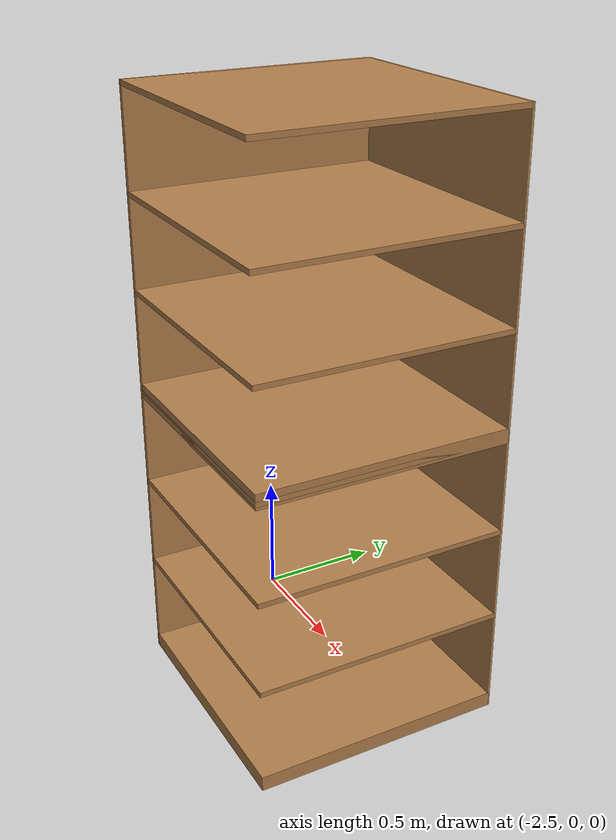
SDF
<?xml version='1.0'?>
<sdf version='1.6'>
  <model name='h_bookshelf'>
    <link name='link'>
      <pose frame=''>-1.78639 -0.153003 0 0 -0 0</pose>
      <inertial>
        <mass>1</mass>
        <pose frame=''>0 0 0 0 -0 0</pose>
        <inertia>
          <ixx>1</ixx>
          <ixy>0</ixy>
          <ixz>0</ixz>
          <iyy>1</iyy>
          <iyz>0</iyz>
          <izz>1</izz>
        </inertia>
      </inertial>
      <self_collide>0</self_collide>
      <kinematic>0</kinematic>
      <gravity>1</gravity>
      <visual name='ModelPreview_1::link::visual_10'>
        <pose frame=''>0 0 0.8 0 -0 0</pose>
        <geometry>
          <box>
            <size>1 1 0.02</size>
          </box>
        </geometry>
        <material>
          <script>
            <uri>file://media/materials/scripts/gazebo.material</uri>
            <name>Gazebo/Wood</name>
          </script>
          <ambient>1 1 1 1</ambient>
          <diffuse>1 1 1 1</diffuse>
          <specular>0.2 0.2 0.2 1</specular>
          <emissive>0 0 0 1</emissive>
          <shader type='vertex'>
            <normal_map>__default__</normal_map>
          </shader>
        </material>
        <cast_shadows>1</cast_shadows>
        <transparency>0</transparency>
      </visual>
      <visual name='visual1'>
        <pose frame=''>0 0.5 0.6 0 -0 0</pose>
        <geometry>
          <box>
            <size>1 0.01 1.2</size>
          </box>
        </geometry>
        <material>
          <script>
            <uri>file://media/materials/scripts/gazebo.material</uri>
            <name>Gazebo/Wood</name>
          </script>
          <ambient>1 1 1 1</ambient>
          <diffuse>1 1 1 1</diffuse>
          <specular>0.2 0.2 0.2 1</specular>
          <emissive>0 0 0 1</emissive>
          <shader type='vertex'>
            <normal_map>__default__</normal_map>
          </shader>
        </material>
        <cast_shadows>1</cast_shadows>
        <transparency>0</transparency>
      </visual>
      <visual name='visual3'>
        <pose frame=''>-0.5 0 0.6 0 -0 0</pose>
        <geometry>
          <box>
            <size>0.02 1 1.2</size>
          </box>
        </geometry>
        <material>
          <script>
            <uri>file://media/materials/scripts/gazebo.material</uri>
            <name>Gazebo/Wood</name>
          </script>
          <ambient>1 1 1 1</ambient>
          <diffuse>1 1 1 1</diffuse>
          <specular>0.2 0.2 0.2 1</specular>
          <emissive>0 0 0 1</emissive>
          <shader type='vertex'>
            <normal_map>__default__</normal_map>
          </shader>
        </material>
        <cast_shadows>1</cast_shadows>
        <transparency>0</transparency>
      </visual>
      <visual name='visual5'>
        <pose frame=''>0 0 1.19 0 -0 0</pose>
        <geometry>
          <box>
            <size>1 1 0.02</size>
          </box>
        </geometry>
        <material>
          <script>
            <uri>file://media/materials/scripts/gazebo.material</uri>
            <name>Gazebo/Wood</name>
          </script>
          <ambient>1 1 1 1</ambient>
          <diffuse>1 1 1 1</diffuse>
          <specular>0.2 0.2 0.2 1</specular>
          <emissive>0 0 0 1</emissive>
          <shader type='vertex'>
            <normal_map>__default__</normal_map>
          </shader>
        </material>
        <cast_shadows>1</cast_shadows>
        <transparency>0</transparency>
      </visual>
      <visual name='visual4'>
        <pose frame=''>0 0 0.03 0 -0 0</pose>
        <geometry>
          <box>
            <size>1 1 0.06</size>
          </box>
        </geometry>
        <material>
          <script>
            <uri>file://media/materials/scripts/gazebo.material</uri>
            <name>Gazebo/Wood</name>
          </script>
          <ambient>1 1 1 1</ambient>
          <diffuse>1 1 1 1</diffuse>
          <specular>0.2 0.2 0.2 1</specular>
          <emissive>0 0 0 1</emissive>
          <shader type='vertex'>
            <normal_map>__default__</normal_map>
          </shader>
        </material>
        <cast_shadows>1</cast_shadows>
        <transparency>0</transparency>
      </visual>
      <visual name='visual6'>
        <pose frame=''>0 0 0.43 0 -0 0</pose>
        <geometry>
          <box>
            <size>1 1 0.02</size>
          </box>
        </geometry>
        <material>
          <script>
            <uri>file://media/materials/scripts/gazebo.material</uri>
            <name>Gazebo/Wood</name>
          </script>
          <ambient>1 1 1 1</ambient>
          <diffuse>1 1 1 1</diffuse>
          <specular>0.2 0.2 0.2 1</specular>
          <emissive>0 0 0 1</emissive>
          <shader type='vertex'>
            <normal_map>__default__</normal_map>
          </shader>
        </material>
        <cast_shadows>1</cast_shadows>
        <transparency>0</transparency>
      </visual>
      <visual name='visual7'>
        <pose frame=''>0 0 0.8 0 -0 0</pose>
        <geometry>
          <box>
            <size>1 1 0.02</size>
          </box>
        </geometry>
        <material>
          <script>
            <uri>file://media/materials/scripts/gazebo.material</uri>
            <name>Gazebo/Wood</name>
          </script>
          <ambient>1 1 1 1</ambient>
          <diffuse>1 1 1 1</diffuse>
          <specular>0.2 0.2 0.2 1</specular>
          <emissive>0 0 0 1</emissive>
          <shader type='vertex'>
            <normal_map>__default__</normal_map>
          </shader>
        </material>
        <cast_shadows>1</cast_shadows>
        <transparency>0</transparency>
      </visual>
      <collision name='high_shelf'>
        <laser_retro>0</laser_retro>
        <max_contacts>10</max_contacts>
        <pose frame=''>0 0 0.8 0 -0 0</pose>
        <geometry>
          <box>
            <size>1 1 0.02</size>
          </box>
        </geometry>
        <surface>
          <friction>
            <ode>
              <mu>1</mu>
              <mu2>1</mu2>
              <fdir1>0 0 0</fdir1>
              <slip1>0</slip1>
              <slip2>0</slip2>
            </ode>
            <torsional>
              <coefficient>1</coefficient>
              <patch_radius>0</patch_radius>
              <surface_radius>0</surface_radius>
              <use_patch_radius>1</use_patch_radius>
              <ode>
                <slip>0</slip>
              </ode>
            </torsional>
          </friction>
          <bounce>
            <restitution_coefficient>0</restitution_coefficient>
            <threshold>1e+06</threshold>
          </bounce>
          <contact>
            <collide_without_contact>0</collide_without_contact>
            <collide_without_contact_bitmask>1</collide_without_contact_bitmask>
            <collide_bitmask>1</collide_bitmask>
            <ode>
              <soft_cfm>0</soft_cfm>
              <soft_erp>0.2</soft_erp>
              <kp>1e+13</kp>
              <kd>1</kd>
              <max_vel>0.01</max_vel>
              <min_depth>0</min_depth>
            </ode>
            <bullet>
              <split_impulse>1</split_impulse>
              <split_impulse_penetration_threshold>-0.01</split_impulse_penetration_threshold>
              <soft_cfm>0</soft_cfm>
              <soft_erp>0.2</soft_erp>
              <kp>1e+13</kp>
              <kd>1</kd>
            </bullet>
          </contact>
        </surface>
      </collision>
      <collision name='low_shelf'>
        <laser_retro>0</laser_retro>
        <max_contacts>10</max_contacts>
        <pose frame=''>0 0 0.43 0 -0 0</pose>
        <geometry>
          <box>
            <size>1 1 0.02</size>
          </box>
        </geometry>
        <surface>
          <friction>
            <ode>
              <mu>1</mu>
              <mu2>1</mu2>
              <fdir1>0 0 0</fdir1>
              <slip1>0</slip1>
              <slip2>0</slip2>
            </ode>
            <torsional>
              <coefficient>1</coefficient>
              <patch_radius>0</patch_radius>
              <surface_radius>0</surface_radius>
              <use_patch_radius>1</use_patch_radius>
              <ode>
                <slip>0</slip>
              </ode>
            </torsional>
          </friction>
          <bounce>
            <restitution_coefficient>0</restitution_coefficient>
            <threshold>1e+06</threshold>
          </bounce>
          <contact>
            <collide_without_contact>0</collide_without_contact>
            <collide_without_contact_bitmask>1</collide_without_contact_bitmask>
            <collide_bitmask>1</collide_bitmask>
            <ode>
              <soft_cfm>0</soft_cfm>
              <soft_erp>0.2</soft_erp>
              <kp>1e+13</kp>
              <kd>1</kd>
              <max_vel>0.01</max_vel>
              <min_depth>0</min_depth>
            </ode>
            <bullet>
              <split_impulse>1</split_impulse>
              <split_impulse_penetration_threshold>-0.01</split_impulse_penetration_threshold>
              <soft_cfm>0</soft_cfm>
              <soft_erp>0.2</soft_erp>
              <kp>1e+13</kp>
              <kd>1</kd>
            </bullet>
          </contact>
        </surface>
      </collision>
      <collision name='back'>
        <laser_retro>0</laser_retro>
        <max_contacts>10</max_contacts>
        <pose frame=''>0 0.5 0.6 0 -0 0</pose>
        <geometry>
          <box>
            <size>1 0.01 1.2</size>
          </box>
        </geometry>
        <surface>
          <friction>
            <ode>
              <mu>1</mu>
              <mu2>1</mu2>
              <fdir1>0 0 0</fdir1>
              <slip1>0</slip1>
              <slip2>0</slip2>
            </ode>
            <torsional>
              <coefficient>1</coefficient>
              <patch_radius>0</patch_radius>
              <surface_radius>0</surface_radius>
              <use_patch_radius>1</use_patch_radius>
              <ode>
                <slip>0</slip>
              </ode>
            </torsional>
          </friction>
          <bounce>
            <restitution_coefficient>0</restitution_coefficient>
            <threshold>1e+06</threshold>
          </bounce>
          <contact>
            <collide_without_contact>0</collide_without_contact>
            <collide_without_contact_bitmask>1</collide_without_contact_bitmask>
            <collide_bitmask>1</collide_bitmask>
            <ode>
              <soft_cfm>0</soft_cfm>
              <soft_erp>0.2</soft_erp>
              <kp>1e+13</kp>
              <kd>1</kd>
              <max_vel>0.01</max_vel>
              <min_depth>0</min_depth>
            </ode>
            <bullet>
              <split_impulse>1</split_impulse>
              <split_impulse_penetration_threshold>-0.01</split_impulse_penetration_threshold>
              <soft_cfm>0</soft_cfm>
              <soft_erp>0.2</soft_erp>
              <kp>1e+13</kp>
              <kd>1</kd>
            </bullet>
          </contact>
        </surface>
      </collision>
      <collision name='right_side'>
        <laser_retro>0</laser_retro>
        <max_contacts>10</max_contacts>
        <pose frame=''>-0.5 0 0.6 0 -0 0</pose>
        <geometry>
          <box>
            <size>0.02 1 1.2</size>
          </box>
        </geometry>
        <surface>
          <friction>
            <ode>
              <mu>1</mu>
              <mu2>1</mu2>
              <fdir1>0 0 0</fdir1>
              <slip1>0</slip1>
              <slip2>0</slip2>
            </ode>
            <torsional>
              <coefficient>1</coefficient>
              <patch_radius>0</patch_radius>
              <surface_radius>0</surface_radius>
              <use_patch_radius>1</use_patch_radius>
              <ode>
                <slip>0</slip>
              </ode>
            </torsional>
          </friction>
          <bounce>
            <restitution_coefficient>0</restitution_coefficient>
            <threshold>1e+06</threshold>
          </bounce>
          <contact>
            <collide_without_contact>0</collide_without_contact>
            <collide_without_contact_bitmask>1</collide_without_contact_bitmask>
            <collide_bitmask>1</collide_bitmask>
            <ode>
              <soft_cfm>0</soft_cfm>
              <soft_erp>0.2</soft_erp>
              <kp>1e+13</kp>
              <kd>1</kd>
              <max_vel>0.01</max_vel>
              <min_depth>0</min_depth>
            </ode>
            <bullet>
              <split_impulse>1</split_impulse>
              <split_impulse_penetration_threshold>-0.01</split_impulse_penetration_threshold>
              <soft_cfm>0</soft_cfm>
              <soft_erp>0.2</soft_erp>
              <kp>1e+13</kp>
              <kd>1</kd>
            </bullet>
          </contact>
        </surface>
      </collision>
      <collision name='bottom'>
        <laser_retro>0</laser_retro>
        <max_contacts>10</max_contacts>
        <pose frame=''>0 0 0.03 0 -0 0</pose>
        <geometry>
          <box>
            <size>1 1 0.06</size>
          </box>
        </geometry>
        <surface>
          <friction>
            <ode>
              <mu>1</mu>
              <mu2>1</mu2>
              <fdir1>0 0 0</fdir1>
              <slip1>0</slip1>
              <slip2>0</slip2>
            </ode>
            <torsional>
              <coefficient>1</coefficient>
              <patch_radius>0</patch_radius>
              <surface_radius>0</surface_radius>
              <use_patch_radius>1</use_patch_radius>
              <ode>
                <slip>0</slip>
              </ode>
            </torsional>
          </friction>
          <bounce>
            <restitution_coefficient>0</restitution_coefficient>
            <threshold>1e+06</threshold>
          </bounce>
          <contact>
            <collide_without_contact>0</collide_without_contact>
            <collide_without_contact_bitmask>1</collide_without_contact_bitmask>
            <collide_bitmask>1</collide_bitmask>
            <ode>
              <soft_cfm>0</soft_cfm>
              <soft_erp>0.2</soft_erp>
              <kp>1e+13</kp>
              <kd>1</kd>
              <max_vel>0.01</max_vel>
              <min_depth>0</min_depth>
            </ode>
            <bullet>
              <split_impulse>1</split_impulse>
              <split_impulse_penetration_threshold>-0.01</split_impulse_penetration_threshold>
              <soft_cfm>0</soft_cfm>
              <soft_erp>0.2</soft_erp>
              <kp>1e+13</kp>
              <kd>1</kd>
            </bullet>
          </contact>
        </surface>
      </collision>
      <collision name='top'>
        <laser_retro>0</laser_retro>
        <max_contacts>10</max_contacts>
        <pose frame=''>0 0 1.19 0 -0 0</pose>
        <geometry>
          <box>
            <size>1 1 0.02</size>
          </box>
        </geometry>
        <surface>
          <friction>
            <ode>
              <mu>1</mu>
              <mu2>1</mu2>
              <fdir1>0 0 0</fdir1>
              <slip1>0</slip1>
              <slip2>0</slip2>
            </ode>
            <torsional>
              <coefficient>1</coefficient>
              <patch_radius>0</patch_radius>
              <surface_radius>0</surface_radius>
              <use_patch_radius>1</use_patch_radius>
              <ode>
                <slip>0</slip>
              </ode>
            </torsional>
          </friction>
          <bounce>
            <restitution_coefficient>0</restitution_coefficient>
            <threshold>1e+06</threshold>
          </bounce>
          <contact>
            <collide_without_contact>0</collide_without_contact>
            <collide_without_contact_bitmask>1</collide_without_contact_bitmask>
            <collide_bitmask>1</collide_bitmask>
            <ode>
              <soft_cfm>0</soft_cfm>
              <soft_erp>0.2</soft_erp>
              <kp>1e+13</kp>
              <kd>1</kd>
              <max_vel>0.01</max_vel>
              <min_depth>0</min_depth>
            </ode>
            <bullet>
              <split_impulse>1</split_impulse>
              <split_impulse_penetration_threshold>-0.01</split_impulse_penetration_threshold>
              <soft_cfm>0</soft_cfm>
              <soft_erp>0.2</soft_erp>
              <kp>1e+13</kp>
              <kd>1</kd>
            </bullet>
          </contact>
        </surface>
      </collision>
    </link>
    <link name='link_clone'>
      <pose frame=''>-1.78639 -0.153003 1.16821 0 -0 0</pose>
      <inertial>
        <mass>1</mass>
        <pose frame=''>0 0 0 0 -0 0</pose>
        <inertia>
          <ixx>1</ixx>
          <ixy>0</ixy>
          <ixz>0</ixz>
          <iyy>1</iyy>
          <iyz>0</iyz>
          <izz>1</izz>
        </inertia>
      </inertial>
      <self_collide>0</self_collide>
      <kinematic>0</kinematic>
      <gravity>1</gravity>
      <visual name='visual1'>
        <pose frame=''>0 0.5 0.6 0 -0 0</pose>
        <geometry>
          <box>
            <size>1 0.01 1.2</size>
          </box>
        </geometry>
        <material>
          <script>
            <uri>file://media/materials/scripts/gazebo.material</uri>
            <name>Gazebo/Wood</name>
          </script>
          <ambient>1 1 1 1</ambient>
          <diffuse>1 1 1 1</diffuse>
          <specular>0.2 0.2 0.2 1</specular>
          <emissive>0 0 0 1</emissive>
          <shader type='vertex'>
            <normal_map>__default__</normal_map>
          </shader>
        </material>
        <cast_shadows>1</cast_shadows>
        <transparency>0</transparency>
      </visual>
      <visual name='visual4'>
        <pose frame=''>0 0 0.03 0 -0 0</pose>
        <geometry>
          <box>
            <size>1 1 0.06</size>
          </box>
        </geometry>
        <material>
          <script>
            <uri>file://media/materials/scripts/gazebo.material</uri>
            <name>Gazebo/Wood</name>
          </script>
          <ambient>1 1 1 1</ambient>
          <diffuse>1 1 1 1</diffuse>
          <specular>0.2 0.2 0.2 1</specular>
          <emissive>0 0 0 1</emissive>
          <shader type='vertex'>
            <normal_map>__default__</normal_map>
          </shader>
        </material>
        <cast_shadows>1</cast_shadows>
        <transparency>0</transparency>
      </visual>
      <visual name='visual_10'>
        <pose frame=''>0 0 0.8 0 -0 0</pose>
        <geometry>
          <box>
            <size>1 1 0.02</size>
          </box>
        </geometry>
        <material>
          <script>
            <uri>file://media/materials/scripts/gazebo.material</uri>
            <name>Gazebo/Wood</name>
          </script>
          <ambient>1 1 1 1</ambient>
          <diffuse>1 1 1 1</diffuse>
          <specular>0.2 0.2 0.2 1</specular>
          <emissive>0 0 0 1</emissive>
          <shader type='vertex'>
            <normal_map>__default__</normal_map>
          </shader>
        </material>
        <cast_shadows>1</cast_shadows>
        <transparency>0</transparency>
      </visual>
      <visual name='visual5'>
        <pose frame=''>0 0 1.19 0 -0 0</pose>
        <geometry>
          <box>
            <size>1 1 0.02</size>
          </box>
        </geometry>
        <material>
          <script>
            <uri>file://media/materials/scripts/gazebo.material</uri>
            <name>Gazebo/Wood</name>
          </script>
          <ambient>1 1 1 1</ambient>
          <diffuse>1 1 1 1</diffuse>
          <specular>0.2 0.2 0.2 1</specular>
          <emissive>0 0 0 1</emissive>
          <shader type='vertex'>
            <normal_map>__default__</normal_map>
          </shader>
        </material>
        <cast_shadows>1</cast_shadows>
        <transparency>0</transparency>
      </visual>
      <visual name='visual7'>
        <pose frame=''>0 0 0.8 0 -0 0</pose>
        <geometry>
          <box>
            <size>1 1 0.02</size>
          </box>
        </geometry>
        <material>
          <script>
            <uri>file://media/materials/scripts/gazebo.material</uri>
            <name>Gazebo/Wood</name>
          </script>
          <ambient>1 1 1 1</ambient>
          <diffuse>1 1 1 1</diffuse>
          <specular>0.2 0.2 0.2 1</specular>
          <emissive>0 0 0 1</emissive>
          <shader type='vertex'>
            <normal_map>__default__</normal_map>
          </shader>
        </material>
        <cast_shadows>1</cast_shadows>
        <transparency>0</transparency>
      </visual>
      <visual name='visual6'>
        <pose frame=''>0 0 0.43 0 -0 0</pose>
        <geometry>
          <box>
            <size>1 1 0.02</size>
          </box>
        </geometry>
        <material>
          <script>
            <uri>file://media/materials/scripts/gazebo.material</uri>
            <name>Gazebo/Wood</name>
          </script>
          <ambient>1 1 1 1</ambient>
          <diffuse>1 1 1 1</diffuse>
          <specular>0.2 0.2 0.2 1</specular>
          <emissive>0 0 0 1</emissive>
          <shader type='vertex'>
            <normal_map>__default__</normal_map>
          </shader>
        </material>
        <cast_shadows>1</cast_shadows>
        <transparency>0</transparency>
      </visual>
      <visual name='visual3'>
        <pose frame=''>-0.5 0 0.6 0 -0 0</pose>
        <geometry>
          <box>
            <size>0.02 1 1.2</size>
          </box>
        </geometry>
        <material>
          <script>
            <uri>file://media/materials/scripts/gazebo.material</uri>
            <name>Gazebo/Wood</name>
          </script>
          <ambient>1 1 1 1</ambient>
          <diffuse>1 1 1 1</diffuse>
          <specular>0.2 0.2 0.2 1</specular>
          <emissive>0 0 0 1</emissive>
          <shader type='vertex'>
            <normal_map>__default__</normal_map>
          </shader>
        </material>
        <cast_shadows>1</cast_shadows>
        <transparency>0</transparency>
      </visual>
      <collision name='back'>
        <laser_retro>0</laser_retro>
        <max_contacts>10</max_contacts>
        <pose frame=''>0 0.5 0.6 0 -0 0</pose>
        <geometry>
          <box>
            <size>1 0.01 1.2</size>
          </box>
        </geometry>
        <surface>
          <friction>
            <ode>
              <mu>1</mu>
              <mu2>1</mu2>
              <fdir1>0 0 0</fdir1>
              <slip1>0</slip1>
              <slip2>0</slip2>
            </ode>
            <torsional>
              <coefficient>1</coefficient>
              <patch_radius>0</patch_radius>
              <surface_radius>0</surface_radius>
              <use_patch_radius>1</use_patch_radius>
              <ode>
                <slip>0</slip>
              </ode>
            </torsional>
          </friction>
          <bounce>
            <restitution_coefficient>0</restitution_coefficient>
            <threshold>1e+06</threshold>
          </bounce>
          <contact>
            <collide_without_contact>0</collide_without_contact>
            <collide_without_contact_bitmask>1</collide_without_contact_bitmask>
            <collide_bitmask>1</collide_bitmask>
            <ode>
              <soft_cfm>0</soft_cfm>
              <soft_erp>0.2</soft_erp>
              <kp>1e+13</kp>
              <kd>1</kd>
              <max_vel>0.01</max_vel>
              <min_depth>0</min_depth>
            </ode>
            <bullet>
              <split_impulse>1</split_impulse>
              <split_impulse_penetration_threshold>-0.01</split_impulse_penetration_threshold>
              <soft_cfm>0</soft_cfm>
              <soft_erp>0.2</soft_erp>
              <kp>1e+13</kp>
              <kd>1</kd>
            </bullet>
          </contact>
        </surface>
      </collision>
      <collision name='high_shelf'>
        <laser_retro>0</laser_retro>
        <max_contacts>10</max_contacts>
        <pose frame=''>0 0 0.8 0 -0 0</pose>
        <geometry>
          <box>
            <size>1 1 0.02</size>
          </box>
        </geometry>
        <surface>
          <friction>
            <ode>
              <mu>1</mu>
              <mu2>1</mu2>
              <fdir1>0 0 0</fdir1>
              <slip1>0</slip1>
              <slip2>0</slip2>
            </ode>
            <torsional>
              <coefficient>1</coefficient>
              <patch_radius>0</patch_radius>
              <surface_radius>0</surface_radius>
              <use_patch_radius>1</use_patch_radius>
              <ode>
                <slip>0</slip>
              </ode>
            </torsional>
          </friction>
          <bounce>
            <restitution_coefficient>0</restitution_coefficient>
            <threshold>1e+06</threshold>
          </bounce>
          <contact>
            <collide_without_contact>0</collide_without_contact>
            <collide_without_contact_bitmask>1</collide_without_contact_bitmask>
            <collide_bitmask>1</collide_bitmask>
            <ode>
              <soft_cfm>0</soft_cfm>
              <soft_erp>0.2</soft_erp>
              <kp>1e+13</kp>
              <kd>1</kd>
              <max_vel>0.01</max_vel>
              <min_depth>0</min_depth>
            </ode>
            <bullet>
              <split_impulse>1</split_impulse>
              <split_impulse_penetration_threshold>-0.01</split_impulse_penetration_threshold>
              <soft_cfm>0</soft_cfm>
              <soft_erp>0.2</soft_erp>
              <kp>1e+13</kp>
              <kd>1</kd>
            </bullet>
          </contact>
        </surface>
      </collision>
      <collision name='top'>
        <laser_retro>0</laser_retro>
        <max_contacts>10</max_contacts>
        <pose frame=''>0 0 1.19 0 -0 0</pose>
        <geometry>
          <box>
            <size>1 1 0.02</size>
          </box>
        </geometry>
        <surface>
          <friction>
            <ode>
              <mu>1</mu>
              <mu2>1</mu2>
              <fdir1>0 0 0</fdir1>
              <slip1>0</slip1>
              <slip2>0</slip2>
            </ode>
            <torsional>
              <coefficient>1</coefficient>
              <patch_radius>0</patch_radius>
              <surface_radius>0</surface_radius>
              <use_patch_radius>1</use_patch_radius>
              <ode>
                <slip>0</slip>
              </ode>
            </torsional>
          </friction>
          <bounce>
            <restitution_coefficient>0</restitution_coefficient>
            <threshold>1e+06</threshold>
          </bounce>
          <contact>
            <collide_without_contact>0</collide_without_contact>
            <collide_without_contact_bitmask>1</collide_without_contact_bitmask>
            <collide_bitmask>1</collide_bitmask>
            <ode>
              <soft_cfm>0</soft_cfm>
              <soft_erp>0.2</soft_erp>
              <kp>1e+13</kp>
              <kd>1</kd>
              <max_vel>0.01</max_vel>
              <min_depth>0</min_depth>
            </ode>
            <bullet>
              <split_impulse>1</split_impulse>
              <split_impulse_penetration_threshold>-0.01</split_impulse_penetration_threshold>
              <soft_cfm>0</soft_cfm>
              <soft_erp>0.2</soft_erp>
              <kp>1e+13</kp>
              <kd>1</kd>
            </bullet>
          </contact>
        </surface>
      </collision>
      <collision name='low_shelf'>
        <laser_retro>0</laser_retro>
        <max_contacts>10</max_contacts>
        <pose frame=''>0 0 0.43 0 -0 0</pose>
        <geometry>
          <box>
            <size>1 1 0.02</size>
          </box>
        </geometry>
        <surface>
          <friction>
            <ode>
              <mu>1</mu>
              <mu2>1</mu2>
              <fdir1>0 0 0</fdir1>
              <slip1>0</slip1>
              <slip2>0</slip2>
            </ode>
            <torsional>
              <coefficient>1</coefficient>
              <patch_radius>0</patch_radius>
              <surface_radius>0</surface_radius>
              <use_patch_radius>1</use_patch_radius>
              <ode>
                <slip>0</slip>
              </ode>
            </torsional>
          </friction>
          <bounce>
            <restitution_coefficient>0</restitution_coefficient>
            <threshold>1e+06</threshold>
          </bounce>
          <contact>
            <collide_without_contact>0</collide_without_contact>
            <collide_without_contact_bitmask>1</collide_without_contact_bitmask>
            <collide_bitmask>1</collide_bitmask>
            <ode>
              <soft_cfm>0</soft_cfm>
              <soft_erp>0.2</soft_erp>
              <kp>1e+13</kp>
              <kd>1</kd>
              <max_vel>0.01</max_vel>
              <min_depth>0</min_depth>
            </ode>
            <bullet>
              <split_impulse>1</split_impulse>
              <split_impulse_penetration_threshold>-0.01</split_impulse_penetration_threshold>
              <soft_cfm>0</soft_cfm>
              <soft_erp>0.2</soft_erp>
              <kp>1e+13</kp>
              <kd>1</kd>
            </bullet>
          </contact>
        </surface>
      </collision>
      <collision name='right_side'>
        <laser_retro>0</laser_retro>
        <max_contacts>10</max_contacts>
        <pose frame=''>-0.5 0 0.6 0 -0 0</pose>
        <geometry>
          <box>
            <size>0.02 1 1.2</size>
          </box>
        </geometry>
        <surface>
          <friction>
            <ode>
              <mu>1</mu>
              <mu2>1</mu2>
              <fdir1>0 0 0</fdir1>
              <slip1>0</slip1>
              <slip2>0</slip2>
            </ode>
            <torsional>
              <coefficient>1</coefficient>
              <patch_radius>0</patch_radius>
              <surface_radius>0</surface_radius>
              <use_patch_radius>1</use_patch_radius>
              <ode>
                <slip>0</slip>
              </ode>
            </torsional>
          </friction>
          <bounce>
            <restitution_coefficient>0</restitution_coefficient>
            <threshold>1e+06</threshold>
          </bounce>
          <contact>
            <collide_without_contact>0</collide_without_contact>
            <collide_without_contact_bitmask>1</collide_without_contact_bitmask>
            <collide_bitmask>1</collide_bitmask>
            <ode>
              <soft_cfm>0</soft_cfm>
              <soft_erp>0.2</soft_erp>
              <kp>1e+13</kp>
              <kd>1</kd>
              <max_vel>0.01</max_vel>
              <min_depth>0</min_depth>
            </ode>
            <bullet>
              <split_impulse>1</split_impulse>
              <split_impulse_penetration_threshold>-0.01</split_impulse_penetration_threshold>
              <soft_cfm>0</soft_cfm>
              <soft_erp>0.2</soft_erp>
              <kp>1e+13</kp>
              <kd>1</kd>
            </bullet>
          </contact>
        </surface>
      </collision>
      <collision name='bottom'>
        <laser_retro>0</laser_retro>
        <max_contacts>10</max_contacts>
        <pose frame=''>0 0 0.03 0 -0 0</pose>
        <geometry>
          <box>
            <size>1 1 0.06</size>
          </box>
        </geometry>
        <surface>
          <friction>
            <ode>
              <mu>1</mu>
              <mu2>1</mu2>
              <fdir1>0 0 0</fdir1>
              <slip1>0</slip1>
              <slip2>0</slip2>
            </ode>
            <torsional>
              <coefficient>1</coefficient>
              <patch_radius>0</patch_radius>
              <surface_radius>0</surface_radius>
              <use_patch_radius>1</use_patch_radius>
              <ode>
                <slip>0</slip>
              </ode>
            </torsional>
          </friction>
          <bounce>
            <restitution_coefficient>0</restitution_coefficient>
            <threshold>1e+06</threshold>
          </bounce>
          <contact>
            <collide_without_contact>0</collide_without_contact>
            <collide_without_contact_bitmask>1</collide_without_contact_bitmask>
            <collide_bitmask>1</collide_bitmask>
            <ode>
              <soft_cfm>0</soft_cfm>
              <soft_erp>0.2</soft_erp>
              <kp>1e+13</kp>
              <kd>1</kd>
              <max_vel>0.01</max_vel>
              <min_depth>0</min_depth>
            </ode>
            <bullet>
              <split_impulse>1</split_impulse>
              <split_impulse_penetration_threshold>-0.01</split_impulse_penetration_threshold>
              <soft_cfm>0</soft_cfm>
              <soft_erp>0.2</soft_erp>
              <kp>1e+13</kp>
              <kd>1</kd>
            </bullet>
          </contact>
        </surface>
      </collision>
    </link>
    <static>1</static>
    <allow_auto_disable>1</allow_auto_disable>
  </model>
</sdf>
